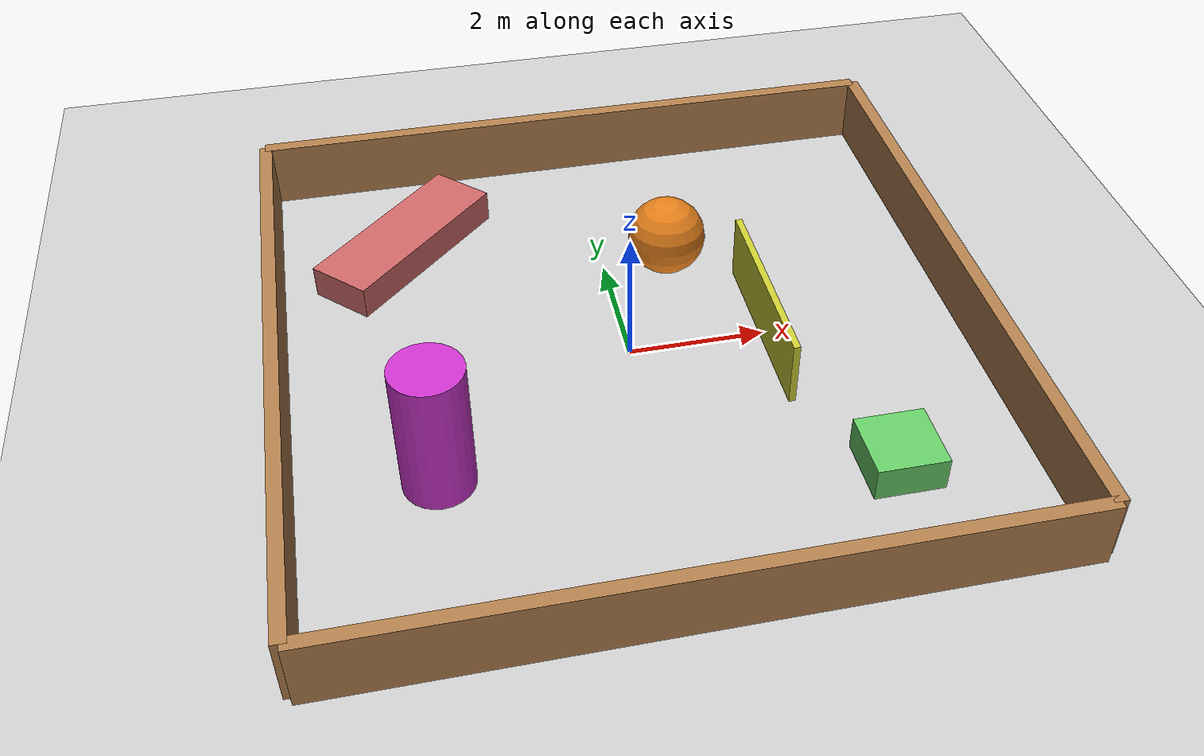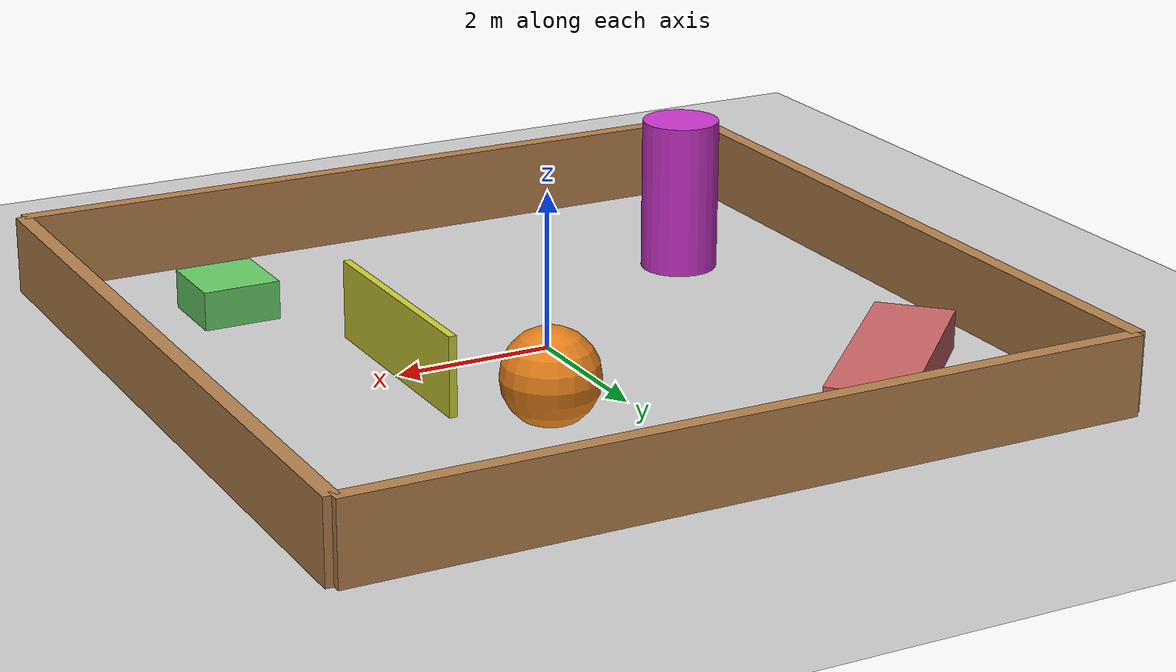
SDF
<?xml version="1.0" ?>
<sdf version="1.9">
  <world name="enclosed_obstacles_world">

    <physics name='4ms' type='ode'>
      <max_step_size>0.004</max_step_size>
      <real_time_factor>1</real_time_factor>
      <real_time_update_rate>250</real_time_update_rate>
    </physics>

    <plugin name='gz::sim::systems::Physics' filename='gz-sim-physics-system'/>
    <plugin name='gz::sim::systems::UserCommands' filename='gz-sim-user-commands-system'/>
    <plugin name='gz::sim::systems::SceneBroadcaster' filename='gz-sim-scene-broadcaster-system'/>
    <plugin name='gz::sim::systems::Contact' filename='gz-sim-contact-system'/>
    <plugin
      filename="gz-sim-sensors-system"
      name="gz::sim::systems::Sensors">
      <render_engine>ogre2</render_engine>
    </plugin>
    <plugin
      filename="gz-sim-imu-system"
      name="gz::sim::systems::Imu">
    </plugin>
    <plugin
      filename="gz-sim-navsat-system"
      name="gz::sim::systems::NavSat">
    </plugin>

    <!-- Lighting -->
    <include>
      <uri>https://fuel.gazebosim.org/1.0/OpenRobotics/models/Sun</uri>
    </include>

    <!-- Ground Plane -->
    <model name="ground_plane">
      <static>true</static>
      <link name="link">
        <collision name="collision">
          <geometry>
            <plane>
              <normal>0 0 1</normal>
              <size>20 20</size>
            </plane>
          </geometry>
          <surface>
            <friction>
              <ode>
                <mu>100</mu>
                <mu2>50</mu2>
              </ode>
            </friction>
          </surface>
        </collision>
        <visual name="visual">
          <geometry>
            <plane>
              <normal>0 0 1</normal>
              <size>20 20</size>
            </plane>
          </geometry>
          <material>
            <ambient>0.8 0.8 0.8 1</ambient>
            <diffuse>0.8 0.8 0.8 1</diffuse>
            <specular>0.1 0.1 0.1 1</specular>
          </material>
        </visual>
      </link>
    </model>

    <!-- Enclosure Walls -->

    <!-- North Wall -->
    <model name="north_wall">
      <static>true</static>
      <pose>0 5 0.5 0 0 0</pose>
      <link name="link">
        <collision name="collision">
          <geometry>
            <box>
              <size>10 0.2 1</size>
            </box>
          </geometry>
        </collision>
        <visual name="visual">
          <geometry>
            <box>
              <size>10 0.2 1</size>
            </box>
          </geometry>
          <material>
            <ambient>0.7 0.5 0.3 1</ambient>
            <diffuse>0.7 0.5 0.3 1</diffuse>
            <specular>0.1 0.1 0.1 1</specular>
          </material>
        </visual>
      </link>
    </model>

    <!-- South Wall -->
    <model name="south_wall">
      <static>true</static>
      <pose>0 -5 0.5 0 0 0</pose>
      <link name="link">
        <collision name="collision">
          <geometry>
            <box>
              <size>10 0.2 1</size>
            </box>
          </geometry>
        </collision>
        <visual name="visual">
          <geometry>
            <box>
              <size>10 0.2 1</size>
            </box>
          </geometry>
          <material>
            <ambient>0.7 0.5 0.3 1</ambient>
            <diffuse>0.7 0.5 0.3 1</diffuse>
            <specular>0.1 0.1 0.1 1</specular>
          </material>
        </visual>
      </link>
    </model>

    <!-- East Wall -->
    <model name="east_wall">
      <static>true</static>
      <pose>5 0 0.5 0 0 0</pose>
      <link name="link">
        <collision name="collision">
          <geometry>
            <box>
              <size>0.2 10 1</size>
            </box>
          </geometry>
        </collision>
        <visual name="visual">
          <geometry>
            <box>
              <size>0.2 10 1</size>
            </box>
          </geometry>
          <material>
            <ambient>0.7 0.5 0.3 1</ambient>
            <diffuse>0.7 0.5 0.3 1</diffuse>
            <specular>0.1 0.1 0.1 1</specular>
          </material>
        </visual>
      </link>
    </model>

    <!-- West Wall -->
    <model name="west_wall">
      <static>true</static>
      <pose>-5 0 0.5 0 0 0</pose>
      <link name="link">
        <collision name="collision">
          <geometry>
            <box>
              <size>0.2 10 1</size>
            </box>
          </geometry>
        </collision>
        <visual name="visual">
          <geometry>
            <box>
              <size>0.2 10 1</size>
            </box>
          </geometry>
          <material>
            <ambient>0.7 0.5 0.3 1</ambient>
            <diffuse>0.7 0.5 0.3 1</diffuse>
            <specular>0.1 0.1 0.1 1</specular>
          </material>
        </visual>
      </link>
    </model>

    <!-- Obstacles of Various Sizes -->

    <!-- Large Central Cube -->

    <!-- Medium Rectangular Prism -->
    <model name="medium_rect">
      <static>true</static>
      <pose>-3 3 0.25 0 0 0.785</pose>
      <link name="link">
        <collision name="collision">
          <geometry>
            <box>
              <size>3 1 0.5</size>
            </box>
          </geometry>
        </collision>
        <visual name="visual">
          <geometry>
            <box>
              <size>3 1 0.5</size>
            </box>
          </geometry>
          <material>
            <ambient>0.8 0.4 0.4 1</ambient>
            <diffuse>0.8 0.4 0.4 1</diffuse>
            <specular>0.3 0.3 0.3 1</specular>
          </material>
        </visual>
      </link>
    </model>

    <!-- Small Cube -->
    <model name="small_cube">
      <static>true</static>
      <pose>3 -3 0.25 0 0 0</pose>
      <link name="link">
        <collision name="collision">
          <geometry>
            <box>
              <size>1 1 0.5</size>
            </box>
          </geometry>
        </collision>
        <visual name="visual">
          <geometry>
            <box>
              <size>1 1 0.5</size>
            </box>
          </geometry>
          <material>
            <ambient>0.4 0.8 0.4 1</ambient>
            <diffuse>0.4 0.8 0.4 1</diffuse>
            <specular>0.3 0.3 0.3 1</specular>
          </material>
        </visual>
      </link>
    </model>

    <!-- Thin Wall -->
    <model name="thin_wall">
      <static>true</static>
      <pose>2 0 0.5 0 0 1.571</pose>
      <link name="link">
        <collision name="collision">
          <geometry>
            <box>
              <size>3 0.1 1</size>
            </box>
          </geometry>
        </collision>
        <visual name="visual">
          <geometry>
            <box>
              <size>3 0.1 1</size>
            </box>
          </geometry>
          <material>
            <ambient>0.8 0.8 0.2 1</ambient>
            <diffuse>0.8 0.8 0.2 1</diffuse>
            <specular>0.3 0.3 0.3 1</specular>
          </material>
        </visual>
      </link>
    </model>

    <!-- Tall Cylinder -->
    <model name="tall_cylinder">
      <static>true</static>
      <pose>-3 -2 1 0 0 0</pose>
      <link name="link">
        <collision name="collision">
          <geometry>
            <cylinder>
              <radius>0.5</radius>
              <length>2</length>
            </cylinder>
          </geometry>
        </collision>
        <visual name="visual">
          <geometry>
            <cylinder>
              <radius>0.5</radius>
              <length>2</length>
            </cylinder>
          </geometry>
          <material>
            <ambient>0.8 0.2 0.8 1</ambient>
            <diffuse>0.8 0.2 0.8 1</diffuse>
            <specular>0.3 0.3 0.3 1</specular>
          </material>
        </visual>
      </link>
    </model>

    <!-- Sphere Obstacle -->
    <model name="sphere_obstacle">
      <static>true</static>
      <pose>1 2 0.5 0 0 0</pose>
      <link name="link">
        <collision name="collision">
          <geometry>
            <sphere>
              <radius>0.6</radius>
            </sphere>
          </geometry>
        </collision>
        <visual name="visual">
          <geometry>
            <sphere>
              <radius>0.6</radius>
            </sphere>
          </geometry>
          <material>
            <ambient>0.9 0.5 0.1 1</ambient>
            <diffuse>0.9 0.5 0.1 1</diffuse>
            <specular>0.3 0.3 0.3 1</specular>
          </material>
        </visual>
      </link>
    </model>

    <!-- Physics -->

    <gravity>0 0 -9.8</gravity>

    <!-- GUI Configuration -->
    <gui fullscreen="0">
      <camera name="user_camera">
        <pose>10 10 10 0 0.5 -2.4</pose>
        <view_controller>orbit</view_controller>
        <projection_type>perspective</projection_type>
      </camera>
    </gui>

  </world>
</sdf>
